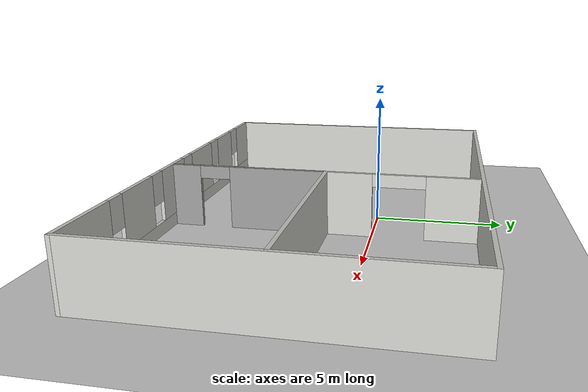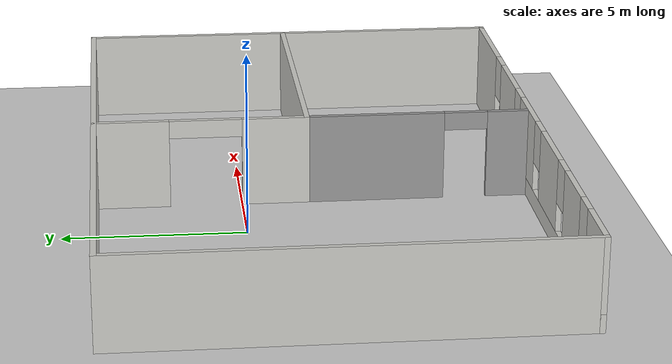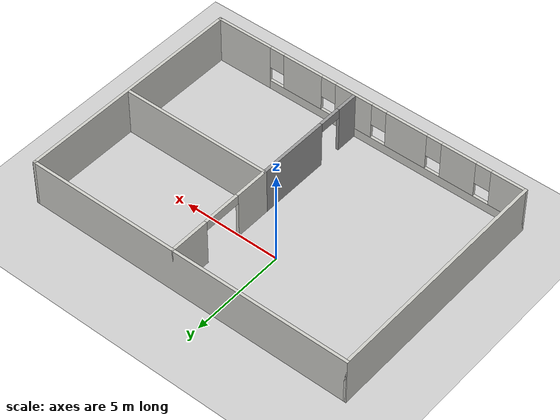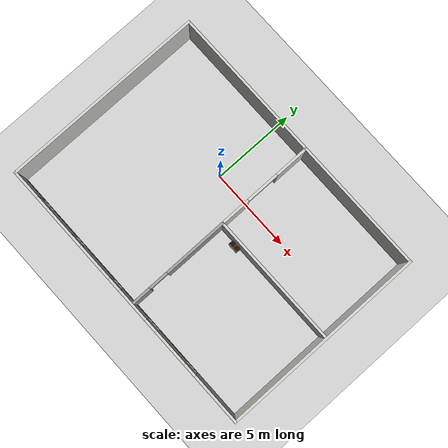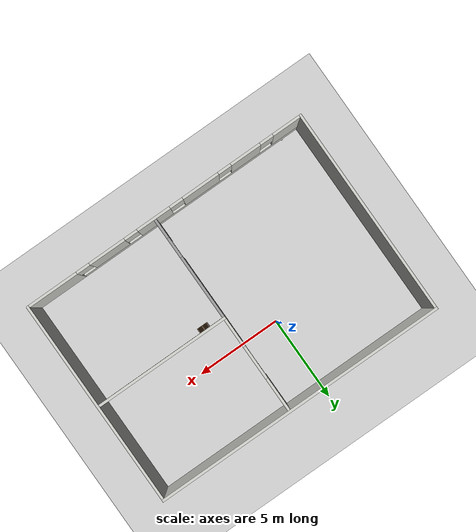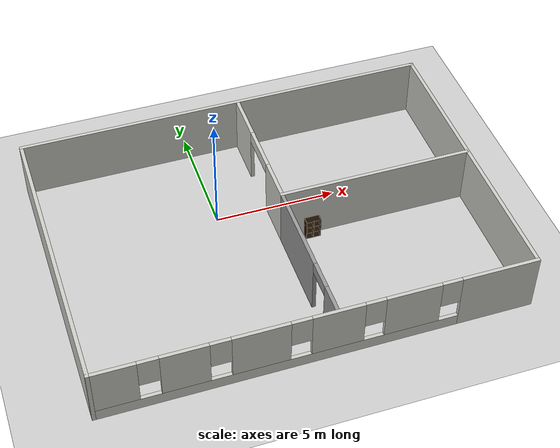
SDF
<sdf version="1.6">
 <world name="default">
  <light name="sun" type="directional">
   <pose>0 0 10 0 -0 0</pose>
   <diffuse>0.8 0.8 0.8 1</diffuse>
   <specular>0.2 0.2 0.2 1</specular>
   <attenuation>
    <range>1000</range>
    <constant>0.9</constant>
    <linear>0.01</linear>
    <quadratic>0.001</quadratic>
   </attenuation>
   <direction>-0.5 0.1 -0.9</direction>
  </light>
  <model name="ground_plane">
   <static>1</static>
   <link name="link">
    <collision name="collision">
     <geometry><plane><normal>0 0 1</normal><size>100 100</size></plane></geometry>
     <surface>
      <contact><collide_bitmask>65535</collide_bitmask></contact>
      <friction><ode><mu>100</mu><mu2>50</mu2></ode></friction>
     </surface>
    </collision>
    <visual name="visual">
     <cast_shadows>0</cast_shadows>
     <geometry><plane><normal>0 0 1</normal><size>100 100</size></plane></geometry>
     <material>
      <script><uri>file://media/materials/scripts/gazebo.material</uri><name>Gazebo/Grey</name></script>
     </material>
    </visual>
   </link>
  </model>
  <gravity>0 0 -9.8</gravity>
  <magnetic_field>6e-06 2.3e-05 -4.2e-05</magnetic_field>
  <atmosphere type="adiabatic"/>
  <physics name="default_physics" default="0" type="ode">
   <max_step_size>0.001</max_step_size>
   <real_time_factor>1</real_time_factor>
   <real_time_update_rate>1000</real_time_update_rate>
  </physics>
  <scene><ambient>0.4 0.4 0.4 1</ambient><background>0.7 0.7 0.7 1</background><shadows>1</shadows></scene>
  <audio><device>default</device></audio>
  <spherical_coordinates>
   <surface_model>EARTH_WGS84</surface_model>
   <latitude_deg>0</latitude_deg>
   <longitude_deg>0</longitude_deg>
   <elevation>0</elevation>
   <heading_deg>0</heading_deg>
  </spherical_coordinates>
  <model name="at_test_env">
   <pose>1.53864 -1.9888 0 0 -0 0</pose>
   <link name="Wall_10">
    <collision name="Wall_10_Collision">
     <geometry><box><size>17.25 0.15 2.5</size></box></geometry>
     <pose>0 0 1.25 0 -0 0</pose>
    </collision>
    <visual name="Wall_10_Visual">
     <pose>0 0 1.25 0 -0 0</pose>
     <geometry><box><size>17.25 0.15 2.5</size></box></geometry>
     <material>
      <script><uri>file://media/materials/scripts/gazebo.material</uri><name>Gazebo/CeilingTiled</name></script>
      <ambient>1 1 1 1</ambient>
     </material>
     <meta><layer>0</layer></meta>
    </visual>
    <pose>-0 6.05 0 0 -0 0</pose>
   </link>
   <link name="Wall_11">
    <collision name="Wall_11_Collision">
     <geometry><box><size>12.25 0.15 2.5</size></box></geometry>
     <pose>0 0 1.25 0 -0 0</pose>
    </collision>
    <visual name="Wall_11_Visual">
     <pose>0 0 1.25 0 -0 0</pose>
     <geometry><box><size>12.25 0.15 2.5</size></box></geometry>
     <material>
      <script><uri>file://media/materials/scripts/gazebo.material</uri><name>Gazebo/CeilingTiled</name></script>
      <ambient>1 1 1 1</ambient>
     </material>
     <meta><layer>0</layer></meta>
    </visual>
    <pose>8.55 -0 0 0 -0 -1.5708</pose>
   </link>
   <link name="Wall_12">
    <pose>-0 -6.05 0 0 -0 3.14159</pose>
    <visual name="Wall_12_Visual_0">
     <pose>-7.05912 0 1.25 0 -0 0</pose>
     <geometry><box><size>3.13176 0.15 2.5</size></box></geometry>
     <material>
      <script><uri>file://media/materials/scripts/gazebo.material</uri><name>Gazebo/CeilingTiled</name></script>
      <ambient>1 1 1 1</ambient>
     </material>
     <meta><layer>0</layer></meta>
    </visual>
    <collision name="Wall_12_Collision_0">
     <geometry><box><size>3.13176 0.15 2.5</size></box></geometry>
     <pose>-7.05912 0 1.25 0 -0 0</pose>
    </collision>
    <visual name="Wall_12_Visual_1">
     <pose>1.56588 0 0.25 0 -0 0</pose>
     <geometry><box><size>14.1182 0.15 0.5</size></box></geometry>
     <material>
      <script><uri>file://media/materials/scripts/gazebo.material</uri><name>Gazebo/CeilingTiled</name></script>
      <ambient>1 1 1 1</ambient>
     </material>
     <meta><layer>0</layer></meta>
    </visual>
    <collision name="Wall_12_Collision_1">
     <geometry><box><size>14.1182 0.15 0.5</size></box></geometry>
     <pose>1.56588 0 0.25 0 -0 0</pose>
    </collision>
    <visual name="Wall_12_Visual_2">
     <pose>-3.59432 0 1.5 0 -0 0</pose>
     <geometry><box><size>2.19784 0.15 2</size></box></geometry>
     <material>
      <script><uri>file://media/materials/scripts/gazebo.material</uri><name>Gazebo/CeilingTiled</name></script>
      <ambient>1 1 1 1</ambient>
     </material>
     <meta><layer>0</layer></meta>
    </visual>
    <collision name="Wall_12_Collision_2">
     <geometry><box><size>2.19784 0.15 2</size></box></geometry>
     <pose>-3.59432 0 1.5 0 -0 0</pose>
    </collision>
    <visual name="Wall_12_Visual_3">
     <pose>-0.672954 0 1.5 0 -0 0</pose>
     <geometry><box><size>2.04489 0.15 2</size></box></geometry>
     <material>
      <script><uri>file://media/materials/scripts/gazebo.material</uri><name>Gazebo/CeilingTiled</name></script>
      <ambient>1 1 1 1</ambient>
     </material>
     <meta><layer>0</layer></meta>
    </visual>
    <collision name="Wall_12_Collision_3">
     <geometry><box><size>2.04489 0.15 2</size></box></geometry>
     <pose>-0.672954 0 1.5 0 -0 0</pose>
    </collision>
    <visual name="Wall_12_Visual_4">
     <pose>2.26371 0 1.5 0 -0 0</pose>
     <geometry><box><size>2.22843 0.15 2</size></box></geometry>
     <material>
      <script><uri>file://media/materials/scripts/gazebo.material</uri><name>Gazebo/CeilingTiled</name></script>
      <ambient>1 1 1 1</ambient>
     </material>
     <meta><layer>0</layer></meta>
    </visual>
    <collision name="Wall_12_Collision_4">
     <geometry><box><size>2.22843 0.15 2</size></box></geometry>
     <pose>2.26371 0 1.5 0 -0 0</pose>
    </collision>
    <visual name="Wall_12_Visual_5">
     <pose>5.0933 0 1.5 0 -0 0</pose>
     <geometry><box><size>1.83076 0.15 2</size></box></geometry>
     <material>
      <script><uri>file://media/materials/scripts/gazebo.material</uri><name>Gazebo/CeilingTiled</name></script>
      <ambient>1 1 1 1</ambient>
     </material>
     <meta><layer>0</layer></meta>
    </visual>
    <collision name="Wall_12_Collision_5">
     <geometry><box><size>1.83076 0.15 2</size></box></geometry>
     <pose>5.0933 0 1.5 0 -0 0</pose>
    </collision>
    <visual name="Wall_12_Visual_6">
     <pose>7.71684 0 1.5 0 -0 0</pose>
     <geometry><box><size>1.81632 0.15 2</size></box></geometry>
     <material>
      <script><uri>file://media/materials/scripts/gazebo.material</uri><name>Gazebo/CeilingTiled</name></script>
      <ambient>1 1 1 1</ambient>
     </material>
     <meta><layer>0</layer></meta>
    </visual>
    <collision name="Wall_12_Collision_6">
     <geometry><box><size>1.81632 0.15 2</size></box></geometry>
     <pose>7.71684 0 1.5 0 -0 0</pose>
    </collision>
    <visual name="Wall_12_Visual_7">
     <pose>-5.09324 0 1.9 0 -0 0</pose>
     <geometry><box><size>0.8 0.15 1.2</size></box></geometry>
     <material>
      <script><uri>file://media/materials/scripts/gazebo.material</uri><name>Gazebo/CeilingTiled</name></script>
      <ambient>1 1 1 1</ambient>
     </material>
     <meta><layer>0</layer></meta>
    </visual>
    <collision name="Wall_12_Collision_7">
     <geometry><box><size>0.8 0.15 1.2</size></box></geometry>
     <pose>-5.09324 0 1.9 0 -0 0</pose>
    </collision>
    <visual name="Wall_12_Visual_8">
     <pose>-2.0954 0 1.9 0 -0 0</pose>
     <geometry><box><size>0.8 0.15 1.2</size></box></geometry>
     <material>
      <script><uri>file://media/materials/scripts/gazebo.material</uri><name>Gazebo/CeilingTiled</name></script>
      <ambient>1 1 1 1</ambient>
     </material>
     <meta><layer>0</layer></meta>
    </visual>
    <collision name="Wall_12_Collision_8">
     <geometry><box><size>0.8 0.15 1.2</size></box></geometry>
     <pose>-2.0954 0 1.9 0 -0 0</pose>
    </collision>
    <visual name="Wall_12_Visual_9">
     <pose>0.749492 0 1.9 0 -0 0</pose>
     <geometry><box><size>0.8 0.15 1.2</size></box></geometry>
     <material>
      <script><uri>file://media/materials/scripts/gazebo.material</uri><name>Gazebo/CeilingTiled</name></script>
      <ambient>1 1 1 1</ambient>
     </material>
     <meta><layer>0</layer></meta>
    </visual>
    <collision name="Wall_12_Collision_9">
     <geometry><box><size>0.8 0.15 1.2</size></box></geometry>
     <pose>0.749492 0 1.9 0 -0 0</pose>
    </collision>
    <visual name="Wall_12_Visual_10">
     <pose>3.77792 0 1.9 0 -0 0</pose>
     <geometry><box><size>0.8 0.15 1.2</size></box></geometry>
     <material>
      <script><uri>file://media/materials/scripts/gazebo.material</uri><name>Gazebo/CeilingTiled</name></script>
      <ambient>1 1 1 1</ambient>
     </material>
     <meta><layer>0</layer></meta>
    </visual>
    <collision name="Wall_12_Collision_10">
     <geometry><box><size>0.8 0.15 1.2</size></box></geometry>
     <pose>3.77792 0 1.9 0 -0 0</pose>
    </collision>
    <visual name="Wall_12_Visual_11">
     <pose>6.40868 0 1.9 0 -0 0</pose>
     <geometry><box><size>0.8 0.15 1.2</size></box></geometry>
     <material>
      <script><uri>file://media/materials/scripts/gazebo.material</uri><name>Gazebo/CeilingTiled</name></script>
      <ambient>1 1 1 1</ambient>
     </material>
     <meta><layer>0</layer></meta>
    </visual>
    <collision name="Wall_12_Collision_11">
     <geometry><box><size>0.8 0.15 1.2</size></box></geometry>
     <pose>6.40868 0 1.9 0 -0 0</pose>
    </collision>
   </link>
   <link name="Wall_13">
    <collision name="Wall_13_Collision">
     <geometry><box><size>12.25 0.15 2.5</size></box></geometry>
     <pose>0 0 1.25 0 -0 0</pose>
    </collision>
    <visual name="Wall_13_Visual">
     <pose>0 0 1.25 0 -0 0</pose>
     <geometry><box><size>12.25 0.15 2.5</size></box></geometry>
     <material>
      <script><uri>file://media/materials/scripts/gazebo.material</uri><name>Gazebo/CeilingTiled</name></script>
      <ambient>1 1 1 1</ambient>
     </material>
     <meta><layer>0</layer></meta>
    </visual>
    <pose>-8.55 -0 0 0 -0 1.5708</pose>
   </link>
   <link name="Wall_16">
    <pose>0.627069 3.125 0 0 -0 -1.5708</pose>
    <visual name="Wall_16_Visual_0">
     <pose>-1.93299 0 1.25 0 -0 0</pose>
     <geometry><box><size>2.13402 0.15 2.5</size></box></geometry>
     <material>
      <script><uri>file://media/materials/scripts/gazebo.material</uri><name>Gazebo/CeilingTiled</name></script>
      <ambient>1 1 1 1</ambient>
     </material>
     <meta><layer>0</layer></meta>
    </visual>
    <collision name="Wall_16_Collision_0">
     <geometry><box><size>2.13402 0.15 2.5</size></box></geometry>
     <pose>-1.93299 0 1.25 0 -0 0</pose>
    </collision>
    <visual name="Wall_16_Visual_1">
     <pose>2.06701 0 1.25 0 -0 0</pose>
     <geometry><box><size>1.86598 0.15 2.5</size></box></geometry>
     <material>
      <script><uri>file://media/materials/scripts/gazebo.material</uri><name>Gazebo/CeilingTiled</name></script>
      <ambient>1 1 1 1</ambient>
     </material>
     <meta><layer>0</layer></meta>
    </visual>
    <collision name="Wall_16_Collision_1">
     <geometry><box><size>1.86598 0.15 2.5</size></box></geometry>
     <pose>2.06701 0 1.25 0 -0 0</pose>
    </collision>
    <visual name="Wall_16_Visual_2">
     <pose>0.134023 0 2.25 0 -0 0</pose>
     <geometry><box><size>2 0.15 0.5</size></box></geometry>
     <material>
      <script><uri>file://media/materials/scripts/gazebo.material</uri><name>Gazebo/CeilingTiled</name></script>
      <ambient>1 1 1 1</ambient>
     </material>
     <meta><layer>0</layer></meta>
    </visual>
    <collision name="Wall_16_Collision_2">
     <geometry><box><size>2 0.15 0.5</size></box></geometry>
     <pose>0.134023 0 2.25 0 -0 0</pose>
    </collision>
   </link>
   <link name="Wall_17">
    <collision name="Wall_17_Collision">
     <geometry><box><size>8 0.15 2.5</size></box></geometry>
     <pose>0 0 1.25 0 -0 0</pose>
    </collision>
    <visual name="Wall_17_Visual">
     <pose>0 0 1.25 0 -0 0</pose>
     <geometry><box><size>8 0.15 2.5</size></box></geometry>
     <material>
      <script><uri>file://media/materials/scripts/gazebo.material</uri><name>Gazebo/CeilingTiled</name></script>
      <ambient>1 1 1 1</ambient>
     </material>
     <meta><layer>0</layer></meta>
    </visual>
    <pose>4.55207 0.2 0 0 -0 0</pose>
   </link>
   <link name="Wall_19">
    <pose>0.627069 -2.85 0 0 -0 -1.5708</pose>
    <visual name="Wall_19_Visual_0">
     <pose>-1.17334 0 1.25 0 -0 0</pose>
     <geometry><box><size>3.90332 0.15 2.5</size></box></geometry>
     <material>
      <script><uri>file://media/materials/scripts/gazebo.material</uri><name>Gazebo/Grey</name></script>
      <ambient>1 1 1 1</ambient>
     </material>
     <meta><layer>0</layer></meta>
    </visual>
    <collision name="Wall_19_Collision_0">
     <geometry><box><size>3.90332 0.15 2.5</size></box></geometry>
     <pose>-1.17334 0 1.25 0 -0 0</pose>
    </collision>
    <visual name="Wall_19_Visual_1">
     <pose>2.55166 0 1.25 0 -0 0</pose>
     <geometry><box><size>1.14668 0.15 2.5</size></box></geometry>
     <material>
      <script><uri>file://media/materials/scripts/gazebo.material</uri><name>Gazebo/Grey</name></script>
      <ambient>1 1 1 1</ambient>
     </material>
     <meta><layer>0</layer></meta>
    </visual>
    <collision name="Wall_19_Collision_1">
     <geometry><box><size>1.14668 0.15 2.5</size></box></geometry>
     <pose>2.55166 0 1.25 0 -0 0</pose>
    </collision>
    <visual name="Wall_19_Visual_2">
     <pose>1.37832 0 2.25 0 -0 0</pose>
     <geometry><box><size>1.2 0.15 0.5</size></box></geometry>
     <material>
      <script><uri>file://media/materials/scripts/gazebo.material</uri><name>Gazebo/Grey</name></script>
      <ambient>1 1 1 1</ambient>
     </material>
     <meta><layer>0</layer></meta>
    </visual>
    <collision name="Wall_19_Collision_2">
     <geometry><box><size>1.2 0.15 0.5</size></box></geometry>
     <pose>1.37832 0 2.25 0 -0 0</pose>
    </collision>
   </link>
   <static>1</static>
  </model>
  <model name="6_Cube_StorageE">
   <link name="Wall_0">
    <pose>0 0 0.01 0 -0 0</pose>
    <inertial>
     <mass>1.6201</mass>
     <inertia><ixx>0.0119</ixx><iyy>0.0631</iyy><izz>0.0513</izz><ixy>0</ixy><ixz>0</ixz><iyz>0</iyz></inertia>
    </inertial>
    <collision name="Wall_0_Collision"><geometry><box><size>0.616 0.296 0.02</size></box></geometry></collision>
    <visual name="Wall_0_Visual">
     <geometry><box><size>0.616 0.296 0.02</size></box></geometry>
     <material>
      <script><uri>file://media/materials/scripts/gazebo.material</uri><name>Gazebo/Grey</name></script>
      <ambient>0.105882 0.0509804 0 1</ambient>
     </material>
    </visual>
   </link>
   <joint name="0_2" type="fixed">
    <pose>-0.308 0 0 0 -0 0</pose>
    <parent>Wall_2</parent>
    <child>Wall_0</child>
    <axis>
     <xyz>1 0 0</xyz>
     <use_parent_model_frame>0</use_parent_model_frame>
     <limit><lower>-1e+16</lower><upper>1e+16</upper></limit>
    </axis>
   </joint>
   <joint name="0_12" type="fixed">
    <parent>Wall_12</parent>
    <child>Wall_0</child>
    <axis>
     <xyz>0 0 1</xyz>
     <use_parent_model_frame>0</use_parent_model_frame>
     <limit><lower>-1e+16</lower><upper>1e+16</upper></limit>
    </axis>
   </joint>
   <joint name="0_4" type="fixed">
    <pose>0.308 0 0 0 -0 0</pose>
    <parent>Wall_4</parent>
    <child>Wall_0</child>
    <axis>
     <xyz>1 0 0</xyz>
     <use_parent_model_frame>0</use_parent_model_frame>
     <limit><lower>-1e+16</lower><upper>1e+16</upper></limit>
    </axis>
   </joint>
   <link name="Wall_10">
    <pose>0 0 0.61 0 -0 0</pose>
    <inertial>
     <mass>1.6201</mass>
     <inertia><ixx>0.0119</ixx><iyy>0.0631</iyy><izz>0.0513</izz><ixy>0</ixy><ixz>0</ixz><iyz>0</iyz></inertia>
    </inertial>
    <collision name="Wall_10_Collision"><geometry><box><size>0.616 0.296 0.02</size></box></geometry></collision>
    <visual name="Wall_10_Visual">
     <geometry><box><size>0.616 0.296 0.02</size></box></geometry>
     <material>
      <script><uri>file://media/materials/scripts/gazebo.material</uri><name>Gazebo/Grey</name></script>
      <ambient>0.105882 0.0509804 0 1</ambient>
     </material>
    </visual>
   </link>
   <joint name="10_2" type="fixed">
    <pose>-0.308 0 0 0 -0 0</pose>
    <parent>Wall_2</parent>
    <child>Wall_10</child>
    <axis>
     <xyz>1 0 0</xyz>
     <use_parent_model_frame>0</use_parent_model_frame>
     <limit><lower>-1e+16</lower><upper>1e+16</upper></limit>
    </axis>
   </joint>
   <joint name="10_12" type="fixed">
    <parent>Wall_12</parent>
    <child>Wall_10</child>
    <axis>
     <xyz>0 0 1</xyz>
     <use_parent_model_frame>0</use_parent_model_frame>
     <limit><lower>-1e+16</lower><upper>1e+16</upper></limit>
    </axis>
   </joint>
   <joint name="10_4" type="fixed">
    <pose>0.308 0 0 0 -0 0</pose>
    <parent>Wall_4</parent>
    <child>Wall_10</child>
    <axis>
     <xyz>1 0 0</xyz>
     <use_parent_model_frame>0</use_parent_model_frame>
     <limit><lower>-1e+16</lower><upper>1e+16</upper></limit>
    </axis>
   </joint>
   <link name="Wall_12">
    <pose>0 0 0.4575 0 -0 0</pose>
    <inertial>
     <mass>2.4065</mass>
     <inertia><ixx>0.0177</ixx><iyy>0.1855</iyy><izz>0.168</izz><ixy>0</ixy><ixz>0</ixz><iyz>0</iyz></inertia>
    </inertial>
    <collision name="Wall_12_Collision"><geometry><box><size>0.02 0.296 0.915</size></box></geometry></collision>
    <visual name="Wall_12_Visual">
     <geometry><box><size>0.02 0.296 0.915</size></box></geometry>
     <material>
      <script><uri>file://media/materials/scripts/gazebo.material</uri><name>Gazebo/Grey</name></script>
      <ambient>0.105882 0.0509804 0 1</ambient>
     </material>
    </visual>
   </link>
   <link name="Wall_2">
    <pose>-0.298 0 0.4575 0 -0 0</pose>
    <inertial>
     <mass>2.4065</mass>
     <inertia><ixx>0.0177</ixx><iyy>0.1855</iyy><izz>0.168</izz><ixy>0</ixy><ixz>0</ixz><iyz>0</iyz></inertia>
    </inertial>
    <collision name="Wall_2_Collision"><geometry><box><size>0.02 0.296 0.915</size></box></geometry></collision>
    <visual name="Wall_2_Visual">
     <geometry><box><size>0.02 0.296 0.915</size></box></geometry>
     <material>
      <script><uri>file://media/materials/scripts/gazebo.material</uri><name>Gazebo/Grey</name></script>
      <ambient>0.105882 0.0509804 0 1</ambient>
     </material>
    </visual>
   </link>
   <link name="Wall_4">
    <pose>0.298 0 0.4575 0 -0 0</pose>
    <inertial>
     <mass>2.4065</mass>
     <inertia><ixx>0.0177</ixx><iyy>0.1855</iyy><izz>0.168</izz><ixy>0</ixy><ixz>0</ixz><iyz>0</iyz></inertia>
    </inertial>
    <collision name="Wall_4_Collision"><geometry><box><size>0.02 0.296 0.915</size></box></geometry></collision>
    <visual name="Wall_4_Visual">
     <geometry><box><size>0.02 0.296 0.915</size></box></geometry>
     <material>
      <script><uri>file://media/materials/scripts/gazebo.material</uri><name>Gazebo/Grey</name></script>
      <ambient>0.105882 0.0509804 0 1</ambient>
     </material>
    </visual>
   </link>
   <link name="Wall_6">
    <pose>0 0 0.905 0 -0 0</pose>
    <inertial>
     <mass>1.6201</mass>
     <inertia><ixx>0.0119</ixx><iyy>0.0631</iyy><izz>0.0513</izz><ixy>0</ixy><ixz>0</ixz><iyz>0</iyz></inertia>
    </inertial>
    <collision name="Wall_6_Collision"><geometry><box><size>0.616 0.296 0.02</size></box></geometry></collision>
    <visual name="Wall_6_Visual">
     <geometry><box><size>0.616 0.296 0.02</size></box></geometry>
     <material>
      <script><uri>file://media/materials/scripts/gazebo.material</uri><name>Gazebo/Grey</name></script>
      <ambient>0.105882 0.0509804 0 1</ambient>
     </material>
    </visual>
   </link>
   <joint name="6_2" type="fixed">
    <pose>-0.308 0 0 0 -0 0</pose>
    <parent>Wall_2</parent>
    <child>Wall_6</child>
    <axis>
     <xyz>2 0 0</xyz>
     <use_parent_model_frame>0</use_parent_model_frame>
     <limit><lower>-1e+16</lower><upper>1e+16</upper></limit>
    </axis>
   </joint>
   <joint name="6_12" type="fixed">
    <parent>Wall_12</parent>
    <child>Wall_6</child>
    <axis>
     <xyz>0 0 1</xyz>
     <use_parent_model_frame>0</use_parent_model_frame>
     <limit><lower>-1e+16</lower><upper>1e+16</upper></limit>
    </axis>
   </joint>
   <joint name="6_4" type="fixed">
    <pose>0.308 0 0 0 -0 0</pose>
    <parent>Wall_4</parent>
    <child>Wall_6</child>
    <axis>
     <xyz>1 0 0</xyz>
     <use_parent_model_frame>0</use_parent_model_frame>
     <limit><lower>-1e+16</lower><upper>1e+16</upper></limit>
    </axis>
   </joint>
   <link name="Wall_8">
    <pose>0 0 0.305 0 -0 0</pose>
    <inertial>
     <mass>1.6201</mass>
     <inertia><ixx>0.0119</ixx><iyy>0.0631</iyy><izz>0.0513</izz><ixy>0</ixy><ixz>0</ixz><iyz>0</iyz></inertia>
    </inertial>
    <collision name="Wall_8_Collision"><geometry><box><size>0.616 0.296 0.02</size></box></geometry></collision>
    <visual name="Wall_8_Visual">
     <geometry><box><size>0.616 0.296 0.02</size></box></geometry>
     <material>
      <script><uri>file://media/materials/scripts/gazebo.material</uri><name>Gazebo/Grey</name></script>
      <ambient>0.105882 0.0509804 0 1</ambient>
     </material>
    </visual>
   </link>
   <joint name="8_2" type="fixed">
    <pose>-0.308 0 0 0 -0 0</pose>
    <parent>Wall_2</parent>
    <child>Wall_8</child>
    <axis>
     <xyz>1 0 0</xyz>
     <use_parent_model_frame>0</use_parent_model_frame>
     <limit><lower>-1e+16</lower><upper>1e+16</upper></limit>
    </axis>
   </joint>
   <joint name="8_12" type="fixed">
    <parent>Wall_12</parent>
    <child>Wall_8</child>
    <axis>
     <xyz>0 0 1</xyz>
     <use_parent_model_frame>0</use_parent_model_frame>
     <limit><lower>-1e+16</lower><upper>1e+16</upper></limit>
    </axis>
   </joint>
   <joint name="8_4" type="fixed">
    <pose>0.308 0 0 0 -0 0</pose>
    <parent>Wall_4</parent>
    <child>Wall_8</child>
    <axis>
     <xyz>1 0 0</xyz>
     <use_parent_model_frame>0</use_parent_model_frame>
     <limit><lower>-1e+16</lower><upper>1e+16</upper></limit>
    </axis>
   </joint>
   <static>1</static>
   <pose>3.40658 -1.99928 0 0 -0 0</pose>
  </model>
  <model name="artag">
   <link name="box">
    <gravity>0</gravity>
    <inertial>
     <mass>1000</mass>
     <inertia><ixx>1</ixx><ixy>0</ixy><ixz>0</ixz><iyy>1</iyy><iyz>0</iyz><izz>1</izz></inertia>
    </inertial>
    <visual name="visual">
     <geometry><box><size>0.12 0.000136 0.12</size></box></geometry>
     <material>
      <script>
       <uri>model://artag/materials/scripts</uri>
       <uri>model://artag/materials/textures</uri>
       <name>ar2020</name>
      </script>
      <shader type="vertex"><normal_map>__default__</normal_map></shader>
      <ambient>1 1 1 1</ambient>
      <diffuse>1 1 1 1</diffuse>
      <specular>0 0 0 1</specular>
      <emissive>0 0 0 1</emissive>
      <lighting>0</lighting>
     </material>
    </visual>
   </link>
   <static>0</static>
   <pose>-5.93579 -7.89945 0.17984 0 -0 0</pose>
  </model>
 </world>
</sdf>
